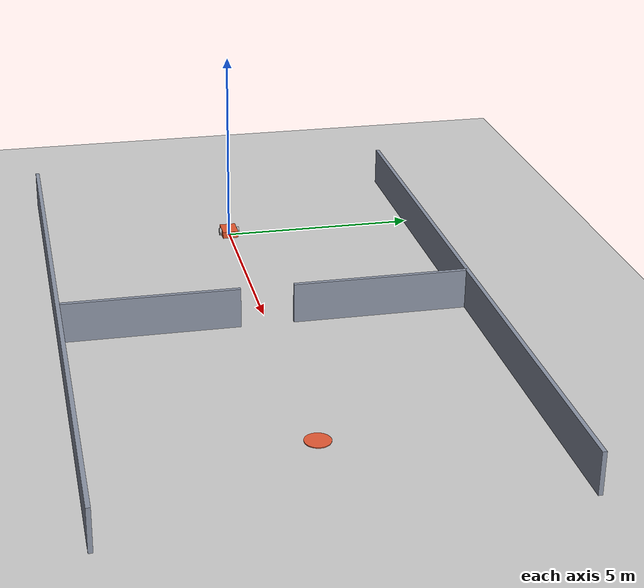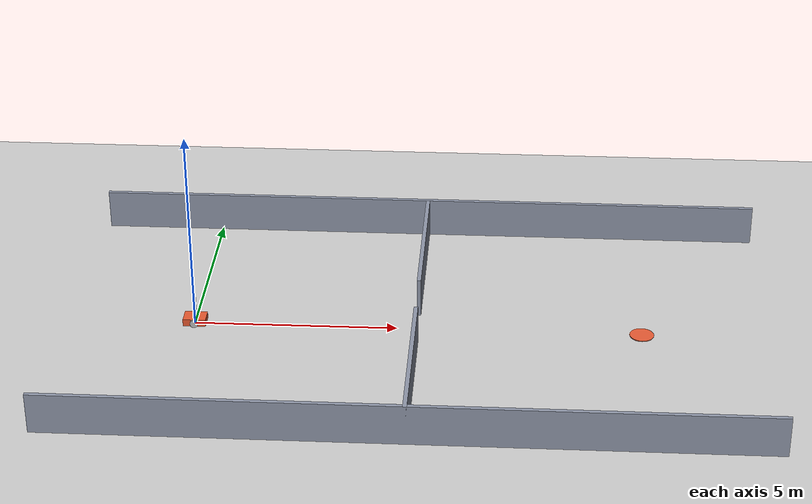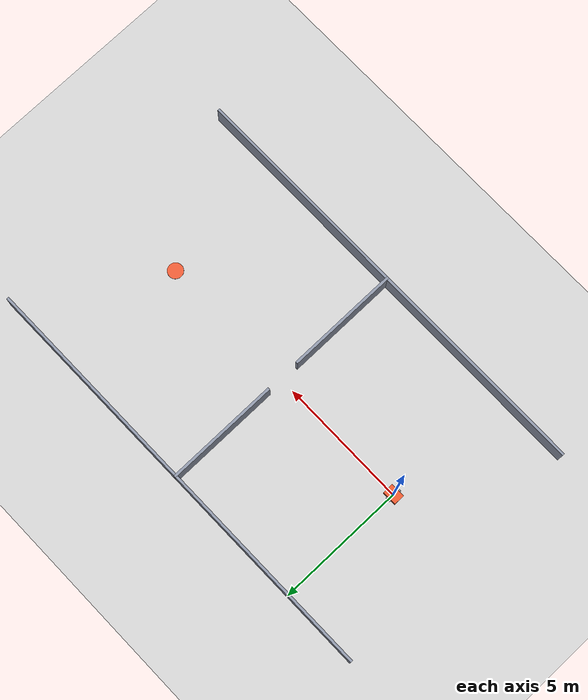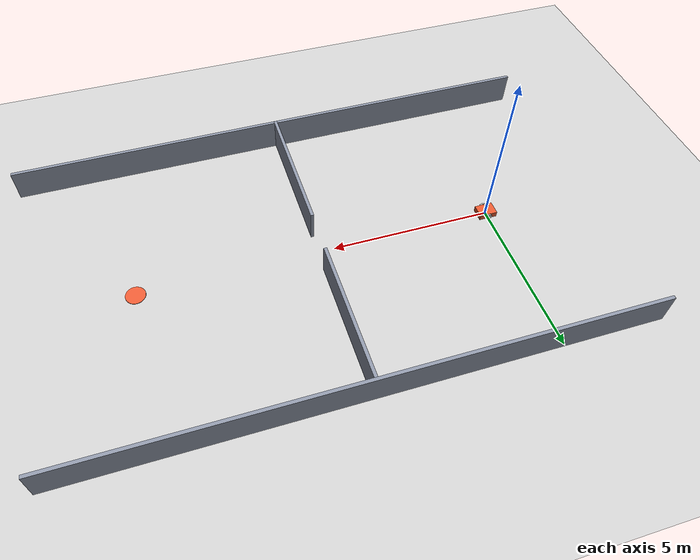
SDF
<sdf version="1.6">
 <world name="crowd_chokepoint">
  <include><uri>model://sun</uri></include>
  <include><uri>model://ground_plane</uri></include>
  <physics type="ode">
   <max_step_size>0.002</max_step_size>
   <real_time_update_rate>500</real_time_update_rate>
  </physics>
  <plugin name="gazebo_ros_state" filename="libgazebo_ros_state.so">
   <ros><namespace>/gazebo</namespace></ros>
   <update_rate>20.0</update_rate>
  </plugin>
  <model name="goal_marker">
   <static>true</static>
   <pose>11.0 0.0 0.01 0 0 0</pose>
   <link name="link">
    <visual name="visual">
     <geometry><cylinder><radius>0.3</radius><length>0.02</length></cylinder></geometry>
     <material><ambient>0.9 0.35 0.2 1</ambient><diffuse>0.9 0.35 0.2 1</diffuse></material>
    </visual>
   </link>
  </model>
  <model name="robot">
   <pose>0.0 0.0 0.1 0 0 0.0</pose>
   <link name="base_link">
    <inertial>
     <mass>12.0</mass>
     <inertia><ixx>0.2</ixx><iyy>0.3</iyy><izz>0.4</izz><ixy>0</ixy><ixz>0</ixz><iyz>0</iyz></inertia>
    </inertial>
    <collision name="collision"><geometry><box><size>0.56 0.42 0.18</size></box></geometry></collision>
    <visual name="visual">
     <geometry><box><size>0.56 0.42 0.18</size></box></geometry>
     <material><ambient>0.85 0.35 0.18 1</ambient><diffuse>0.89 0.34 0.18 1</diffuse></material>
    </visual>
    <visual name="mast">
     <pose>0 0 0.35 0 0 0</pose>
     <geometry><cylinder><radius>0.04</radius><length>0.5</length></cylinder></geometry>
    </visual>
    <collision name="caster_front">
     <pose>0.2 0 -0.07 0 0 0</pose>
     <geometry><sphere><radius>0.03</radius></sphere></geometry>
     <surface><friction><ode><mu>0.0</mu><mu2>0.0</mu2></ode></friction></surface>
    </collision>
    <collision name="caster_back">
     <pose>-0.2 0 -0.07 0 0 0</pose>
     <geometry><sphere><radius>0.03</radius></sphere></geometry>
     <surface><friction><ode><mu>0.0</mu><mu2>0.0</mu2></ode></friction></surface>
    </collision>
   </link>
   <link name="left_wheel">
    <pose>0 0.24 -0.0 -1.5707 0 0</pose>
    <inertial>
     <mass>0.8</mass>
     <inertia><ixx>0.002</ixx><iyy>0.002</iyy><izz>0.004</izz><ixy>0</ixy><ixz>0</ixz><iyz>0</iyz></inertia>
    </inertial>
    <collision name="collision">
     <geometry><cylinder><radius>0.1</radius><length>0.05</length></cylinder></geometry>
    </collision>
    <visual name="visual">
     <geometry><cylinder><radius>0.1</radius><length>0.05</length></cylinder></geometry>
    </visual>
   </link>
   <link name="right_wheel">
    <pose>0 -0.24 -0.0 -1.5707 0 0</pose>
    <inertial>
     <mass>0.8</mass>
     <inertia><ixx>0.002</ixx><iyy>0.002</iyy><izz>0.004</izz><ixy>0</ixy><ixz>0</ixz><iyz>0</iyz></inertia>
    </inertial>
    <collision name="collision">
     <geometry><cylinder><radius>0.1</radius><length>0.05</length></cylinder></geometry>
    </collision>
    <visual name="visual">
     <geometry><cylinder><radius>0.1</radius><length>0.05</length></cylinder></geometry>
    </visual>
   </link>
   <joint name="left_wheel_joint" type="revolute">
    <parent>base_link</parent>
    <child>left_wheel</child>
    <axis><xyz>0 0 1</xyz></axis>
   </joint>
   <joint name="right_wheel_joint" type="revolute">
    <parent>base_link</parent>
    <child>right_wheel</child>
    <axis><xyz>0 0 1</xyz></axis>
   </joint>
   <link name="laser">
    <pose>0 0 0.25 0 0 0</pose>
    <inertial>
     <mass>0.1</mass>
     <inertia><ixx>1e-4</ixx><iyy>1e-4</iyy><izz>1e-4</izz><ixy>0</ixy><ixz>0</ixz><iyz>0</iyz></inertia>
    </inertial>
    <visual name="visual">
     <geometry><cylinder><radius>0.05</radius><length>0.06</length></cylinder></geometry>
    </visual>
    <sensor name="lidar" type="ray">
     <always_on>true</always_on>
     <update_rate>10</update_rate>
     <visualize>false</visualize>
     <ray>
      <scan>
       <horizontal>
        <samples>720</samples>
        <resolution>1</resolution>
        <min_angle>-3.14159</min_angle>
        <max_angle>3.14159</max_angle>
       </horizontal>
      </scan>
      <range><min>0.25</min><max>12.0</max><resolution>0.01</resolution></range>
     </ray>
     <plugin name="lidar_plugin" filename="libgazebo_ros_ray_sensor.so">
      <ros><remapping>~/out:=scan</remapping></ros>
      <output_type>sensor_msgs/LaserScan</output_type>
      <frame_name>laser</frame_name>
     </plugin>
    </sensor>
   </link>
   <joint name="laser_joint" type="fixed"><parent>base_link</parent><child>laser</child></joint>
   <plugin name="diff_drive" filename="libgazebo_ros_diff_drive.so">
    <update_rate>50</update_rate>
    <left_joint>left_wheel_joint</left_joint>
    <right_joint>right_wheel_joint</right_joint>
    <wheel_separation>0.48</wheel_separation>
    <wheel_diameter>0.2</wheel_diameter>
    <max_wheel_torque>30</max_wheel_torque>
    <max_wheel_acceleration>3.0</max_wheel_acceleration>
    <publish_odom>true</publish_odom>
    <publish_odom_tf>true</publish_odom_tf>
    <publish_wheel_tf>false</publish_wheel_tf>
    <odometry_frame>odom</odometry_frame>
    <robot_base_frame>base_link</robot_base_frame>
   </plugin>
  </model>
  <model name="wall_0">
   <static>true</static>
   <pose>5.500 2.850 0.5 0 0 1.5708</pose>
   <link name="link">
    <collision name="collision"><geometry><box><size>4.400 0.1 1.0</size></box></geometry></collision>
    <visual name="visual">
     <geometry><box><size>4.400 0.1 1.0</size></box></geometry>
     <material><ambient>0.35 0.38 0.45 1</ambient><diffuse>0.55 0.58 0.65 1</diffuse></material>
    </visual>
   </link>
  </model>
  <model name="wall_1">
   <static>true</static>
   <pose>5.500 -2.850 0.5 0 0 -1.5708</pose>
   <link name="link">
    <collision name="collision"><geometry><box><size>4.400 0.1 1.0</size></box></geometry></collision>
    <visual name="visual">
     <geometry><box><size>4.400 0.1 1.0</size></box></geometry>
     <material><ambient>0.35 0.38 0.45 1</ambient><diffuse>0.55 0.58 0.65 1</diffuse></material>
    </visual>
   </link>
  </model>
  <model name="wall_2">
   <static>true</static>
   <pose>5.500 5.000 0.5 0 0 0.0000</pose>
   <link name="link">
    <collision name="collision"><geometry><box><size>17.100 0.1 1.0</size></box></geometry></collision>
    <visual name="visual">
     <geometry><box><size>17.100 0.1 1.0</size></box></geometry>
     <material><ambient>0.35 0.38 0.45 1</ambient><diffuse>0.55 0.58 0.65 1</diffuse></material>
    </visual>
   </link>
  </model>
  <model name="wall_3">
   <static>true</static>
   <pose>5.500 -5.000 0.5 0 0 0.0000</pose>
   <link name="link">
    <collision name="collision"><geometry><box><size>17.100 0.1 1.0</size></box></geometry></collision>
    <visual name="visual">
     <geometry><box><size>17.100 0.1 1.0</size></box></geometry>
     <material><ambient>0.35 0.38 0.45 1</ambient><diffuse>0.55 0.58 0.65 1</diffuse></material>
    </visual>
   </link>
  </model>
 </world>
</sdf>
